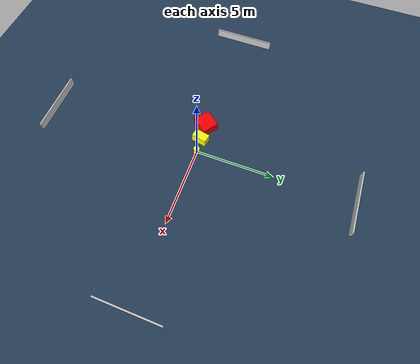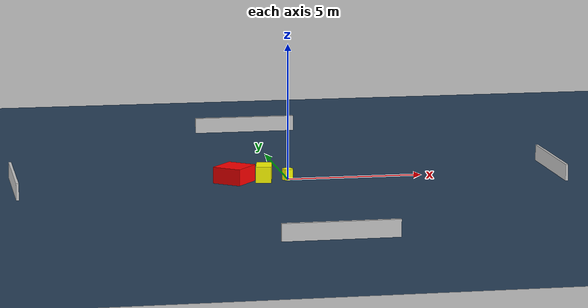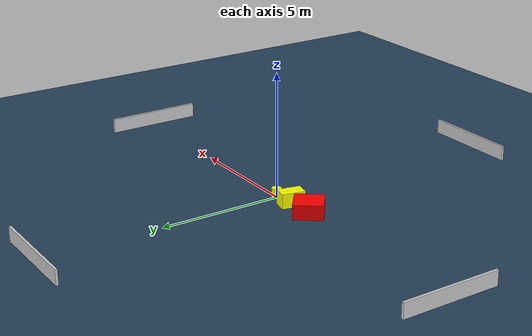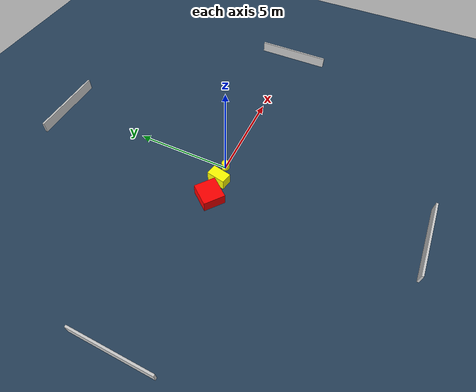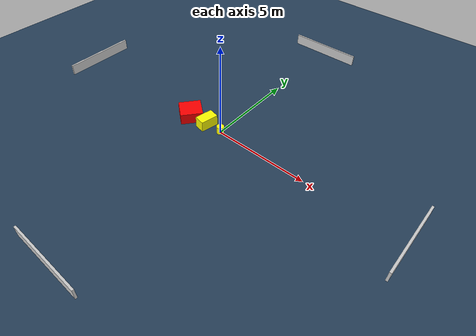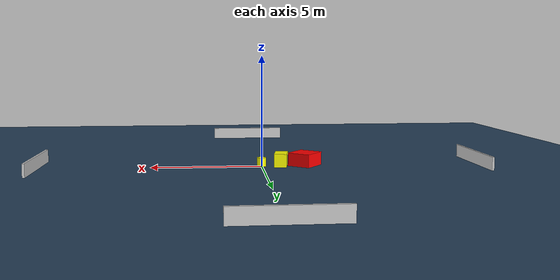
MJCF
<?xml version="1.0" ?>
<mujoco model="generated_environment">
  <option timestep="0.01" integrator="RK4" cone="elliptic"/>
  <default>
    <geom density="1"/>
  </default>
  <asset>
    <texture builtin="gradient" height="3072" name="skybox" rgb1="0.3 0.5 0.7" rgb2="0 0 0" type="skybox" width="512"/>
    <texture builtin="checker" height="300" name="groundplane" rgb1="0.2 0.3 0.4" rgb2="0.1 0.2 0.3" type="2d" width="300"/>
    <material name="groundplane" reflectance="0.2" texrepeat="5 5" texture="groundplane"/>
  </asset>
  <worldbody>
    <light dir="0 0 -1" directional="true" pos="0 0 1.5"/>
    <geom condim="3" friction="0.5 0.005 0.001" material="groundplane" name="floor" pos="0 0 0" size="0 0 0.05" type="plane"/>
    <body name="walls">
      <geom name="wall_1" condim="4" pos="-10.0 0.0 0.3" rgba="0.800000011920929 0.800000011920929 0.800000011920929 1.0" size="0.05 2.0 0.3" type="box"/>
      <geom name="wall_2" condim="4" pos="10.0 0.0 0.3" rgba="0.800000011920929 0.800000011920929 0.800000011920929 1.0" size="0.05 2.0 0.3" type="box"/>
      <geom name="wall_3" condim="4" pos="0.0 -10.0 0.3" rgba="0.800000011920929 0.800000011920929 0.800000011920929 1.0" size="2.0 0.05 0.3" type="box"/>
      <geom name="wall_4" condim="4" pos="0.0 10.0 0.3" rgba="0.800000011920929 0.800000011920929 0.800000011920929 1.0" size="2.0 0.05 0.3" type="box"/>
    </body>
    <body name="robot">
      <joint name="joint_x" type="slide" pos="0 0 0" axis="1 0 0"/>
      <joint name="joint_y" type="slide" pos="0 0 0" axis="0 1 0"/>
      <geom name="robot" type="cylinder" pos="0.0 0.0 0.2" size="0.2 0.2 0.0" mass="5.0" friction="1.0 0.005 0.0001" condim="4" rgba="1.0 1.0 0.0 1.0"/>
    </body>
    <body name="obstacle_1_movable">
      <geom name="obstacle_1_movable" condim="4" pos="-0.8927342727351173 -0.06275376935552741 0.3" euler="0 0 258.7604650865565" friction="0.0 0.005 0.001" rgba="1.0 1.0 0.0 1.0" size="0.47927040715983105 0.2821032790451825 0.3" type="box" mass="0.1"/>
      <joint type="free"/>
    </body>
    <body name="obstacle_2_static">
      <geom name="obstacle_2_static" condim="4" pos="-1.9951612881748273 -0.10629065546957103 0.3" euler="0 0 231.3866386487114" friction="0.0 0.005 0.001" rgba="1.0 0.0 0.0 1.0" size="0.5867405295864614 0.5470410698370207 0.3" type="box"/>
    </body>
  </worldbody>
  <actuator>
    <motor name="actuator_x" joint="joint_x" gear="1" ctrlrange="-1 1"/>
    <motor name="actuator_y" joint="joint_y" gear="1" ctrlrange="-1 1"/>
  </actuator>
</mujoco>
